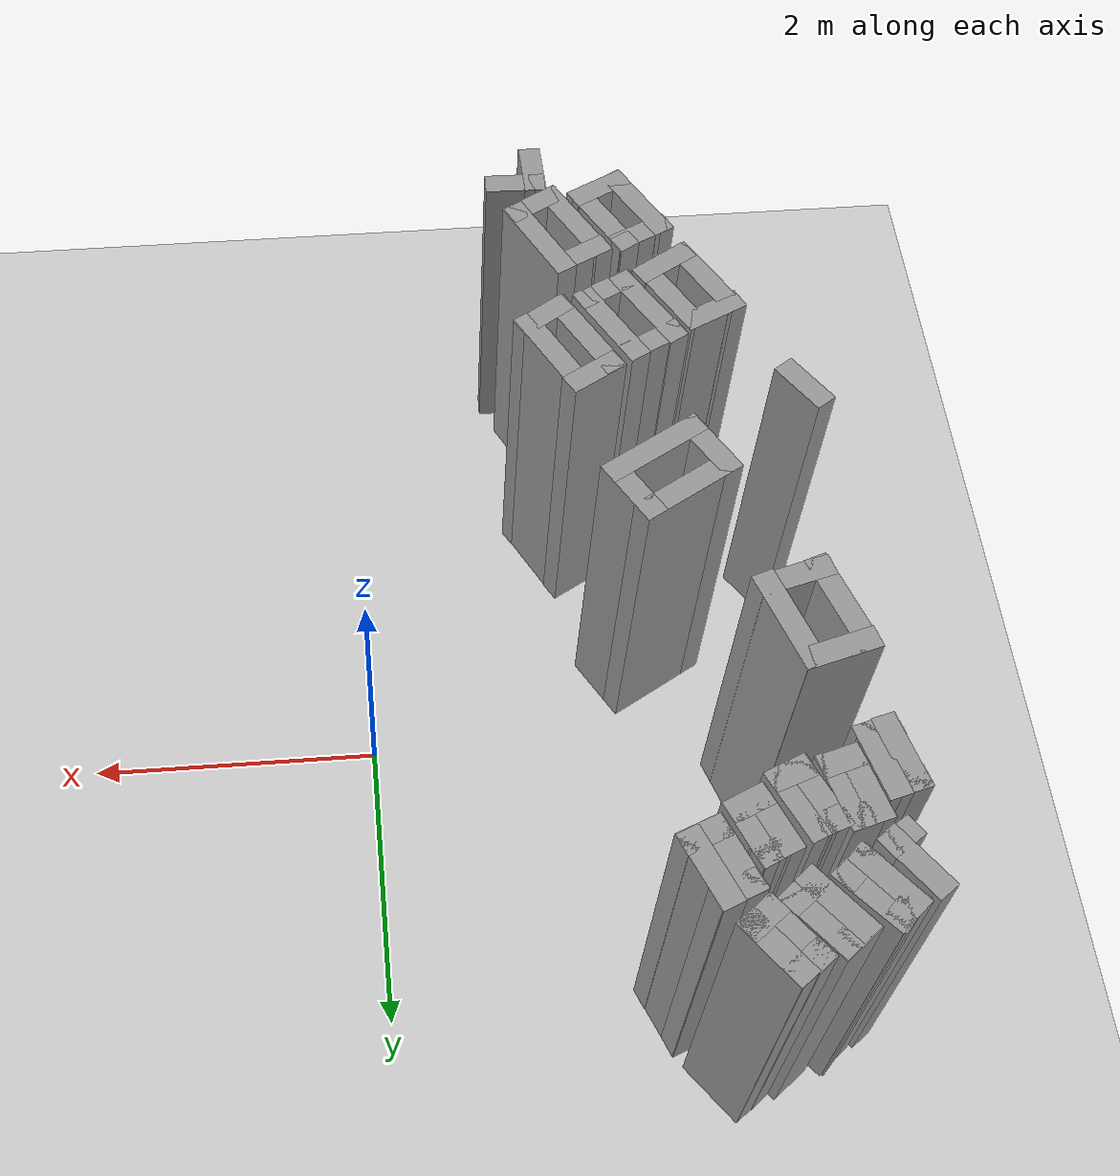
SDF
<sdf version="1.7">
 <world name="default">
  <include><uri>model://sun</uri></include>
  <include><uri>model://ground_plane</uri></include>
  <model name="iitj">
   <pose>-3.03973 -1.21048 0 0 -0 0</pose>
   <link name="Wall_186">
    <collision name="Wall_186_Collision">
     <geometry><box><size>0.64769 0.15 2.5</size></box></geometry>
     <pose>0 0 1.25 0 -0 0</pose>
    </collision>
    <visual name="Wall_186_Visual">
     <pose>0 0 1.25 0 -0 0</pose>
     <geometry><box><size>0.64769 0.15 2.5</size></box></geometry>
     <material>
      <script><uri>file://media/materials/scripts/gazebo.material</uri><name>Gazebo/Grey</name></script>
      <ambient>1 1 1 1</ambient>
     </material>
     <meta><layer>0</layer></meta>
    </visual>
    <pose>0.987547 -1.66589 0 0 -0 -1.06824</pose>
   </link>
   <link name="Wall_187">
    <collision name="Wall_187_Collision">
     <geometry><box><size>0.437529 0.15 2.5</size></box></geometry>
     <pose>0 0 1.25 0 -0 0</pose>
    </collision>
    <visual name="Wall_187_Visual">
     <pose>0 0 1.25 0 -0 0</pose>
     <geometry><box><size>0.437529 0.15 2.5</size></box></geometry>
     <material>
      <script><uri>file://media/materials/scripts/gazebo.material</uri><name>Gazebo/Grey</name></script>
      <ambient>1 1 1 1</ambient>
     </material>
     <meta><layer>0</layer></meta>
    </visual>
    <pose>1.23128 -1.81951 0 0 -0 0.464887</pose>
   </link>
   <link name="Wall_188">
    <collision name="Wall_188_Collision">
     <geometry><box><size>0.64769 0.15 2.5</size></box></geometry>
     <pose>0 0 1.25 0 -0 0</pose>
    </collision>
    <visual name="Wall_188_Visual">
     <pose>0 0 1.25 0 -0 0</pose>
     <geometry><box><size>0.64769 0.15 2.5</size></box></geometry>
     <material>
      <script><uri>file://media/materials/scripts/gazebo.material</uri><name>Gazebo/Grey</name></script>
      <ambient>1 1 1 1</ambient>
     </material>
     <meta><layer>0</layer></meta>
    </visual>
    <pose>1.23992 -1.53698 0 0 -0 2.07335</pose>
   </link>
   <link name="Wall_189">
    <collision name="Wall_189_Collision">
     <geometry><box><size>0.439662 0.15 2.5</size></box></geometry>
     <pose>0 0 1.25 0 -0 0</pose>
    </collision>
    <visual name="Wall_189_Visual">
     <pose>0 0 1.25 0 -0 0</pose>
     <geometry><box><size>0.439662 0.15 2.5</size></box></geometry>
     <material>
      <script><uri>file://media/materials/scripts/gazebo.material</uri><name>Gazebo/Grey</name></script>
      <ambient>1 1 1 1</ambient>
     </material>
     <meta><layer>0</layer></meta>
    </visual>
    <pose>0.993875 -1.38568 0 0 -0 -2.69819</pose>
   </link>
   <link name="Wall_193">
    <collision name="Wall_193_Collision">
     <geometry><box><size>0.442594 0.15 2.5</size></box></geometry>
     <pose>0 0 1.25 0 -0 0</pose>
    </collision>
    <visual name="Wall_193_Visual">
     <pose>0 0 1.25 0 -0 0</pose>
     <geometry><box><size>0.442594 0.15 2.5</size></box></geometry>
     <material>
      <script><uri>file://media/materials/scripts/gazebo.material</uri><name>Gazebo/Grey</name></script>
      <ambient>1 1 1 1</ambient>
     </material>
     <meta><layer>0</layer></meta>
    </visual>
    <pose>0.874775 -1.09728 0 0 -0 0.537733</pose>
   </link>
   <link name="Wall_195">
    <collision name="Wall_195_Collision">
     <geometry><box><size>0.644327 0.15 2.5</size></box></geometry>
     <pose>0 0 1.25 0 -0 0</pose>
    </collision>
    <visual name="Wall_195_Visual">
     <pose>0 0 1.25 0 -0 0</pose>
     <geometry><box><size>0.644327 0.15 2.5</size></box></geometry>
     <material>
      <script><uri>file://media/materials/scripts/gazebo.material</uri><name>Gazebo/Grey</name></script>
      <ambient>1 1 1 1</ambient>
     </material>
     <meta><layer>0</layer></meta>
    </visual>
    <pose>0.871209 -0.806616 0 0 -0 -1.06094</pose>
   </link>
   <link name="Wall_197">
    <collision name="Wall_197_Collision">
     <geometry><box><size>0.673902 0.15 2.5</size></box></geometry>
     <pose>0 0 1.25 0 -0 0</pose>
    </collision>
    <visual name="Wall_197_Visual">
     <pose>0 0 1.25 0 -0 0</pose>
     <geometry><box><size>0.673902 0.15 2.5</size></box></geometry>
     <material>
      <script><uri>file://media/materials/scripts/gazebo.material</uri><name>Gazebo/Grey</name></script>
      <ambient>1 1 1 1</ambient>
     </material>
     <meta><layer>0</layer></meta>
    </visual>
    <pose>0.613228 -0.944134 0 0 -0 2.08502</pose>
   </link>
   <link name="Wall_199">
    <collision name="Wall_199_Collision">
     <geometry><box><size>0.444158 0.15 2.5</size></box></geometry>
     <pose>0 0 1.25 0 -0 0</pose>
    </collision>
    <visual name="Wall_199_Visual">
     <pose>0 0 1.25 0 -0 0</pose>
     <geometry><box><size>0.444158 0.15 2.5</size></box></geometry>
     <material>
      <script><uri>file://media/materials/scripts/gazebo.material</uri><name>Gazebo/Grey</name></script>
      <ambient>1 1 1 1</ambient>
     </material>
     <meta><layer>0</layer></meta>
    </visual>
    <pose>0.61043 -0.653474 0 0 -0 0.439548</pose>
   </link>
   <link name="Wall_202">
    <collision name="Wall_202_Collision">
     <geometry><box><size>0.698683 0.15 2.5</size></box></geometry>
     <pose>0 0 1.25 0 -0 0</pose>
    </collision>
    <visual name="Wall_202_Visual">
     <pose>0 0 1.25 0 -0 0</pose>
     <geometry><box><size>0.698683 0.15 2.5</size></box></geometry>
     <material>
      <script><uri>file://media/materials/scripts/gazebo.material</uri><name>Gazebo/Grey</name></script>
      <ambient>1 1 1 1</ambient>
     </material>
     <meta><layer>0</layer></meta>
    </visual>
    <pose>1.44228 -1.52213 0 0 -0 -1.07463</pose>
   </link>
   <link name="Wall_203">
    <collision name="Wall_203_Collision">
     <geometry><box><size>0.419364 0.15 2.5</size></box></geometry>
     <pose>0 0 1.25 0 -0 0</pose>
    </collision>
    <visual name="Wall_203_Visual">
     <pose>0 0 1.25 0 -0 0</pose>
     <geometry><box><size>0.419364 0.15 2.5</size></box></geometry>
     <material>
      <script><uri>file://media/materials/scripts/gazebo.material</uri><name>Gazebo/Grey</name></script>
      <ambient>1 1 1 1</ambient>
     </material>
     <meta><layer>0</layer></meta>
    </visual>
    <pose>1.69514 -1.70243 0 0 -0 0.508676</pose>
   </link>
   <link name="Wall_204">
    <collision name="Wall_204_Collision">
     <geometry><box><size>0.692978 0.15 2.5</size></box></geometry>
     <pose>0 0 1.25 0 -0 0</pose>
    </collision>
    <visual name="Wall_204_Visual">
     <pose>0 0 1.25 0 -0 0</pose>
     <geometry><box><size>0.692978 0.15 2.5</size></box></geometry>
     <material>
      <script><uri>file://media/materials/scripts/gazebo.material</uri><name>Gazebo/Grey</name></script>
      <ambient>1 1 1 1</ambient>
     </material>
     <meta><layer>0</layer></meta>
    </visual>
    <pose>1.69291 -1.39094 0 0 -0 2.04719</pose>
   </link>
   <link name="Wall_205">
    <collision name="Wall_205_Collision">
     <geometry><box><size>0.436235 0.15 2.5</size></box></geometry>
     <pose>0 0 1.25 0 -0 0</pose>
    </collision>
    <visual name="Wall_205_Visual">
     <pose>0 0 1.25 0 -0 0</pose>
     <geometry><box><size>0.436235 0.15 2.5</size></box></geometry>
     <material>
      <script><uri>file://media/materials/scripts/gazebo.material</uri><name>Gazebo/Grey</name></script>
      <ambient>1 1 1 1</ambient>
     </material>
     <meta><layer>0</layer></meta>
    </visual>
    <pose>1.43541 -1.21759 0 0 -0 -2.68364</pose>
   </link>
   <link name="Wall_207">
    <collision name="Wall_207_Collision">
     <geometry><box><size>0.680486 0.15 2.5</size></box></geometry>
     <pose>0 0 1.25 0 -0 0</pose>
    </collision>
    <visual name="Wall_207_Visual">
     <pose>0 0 1.25 0 -0 0</pose>
     <geometry><box><size>0.680486 0.15 2.5</size></box></geometry>
     <material>
      <script><uri>file://media/materials/scripts/gazebo.material</uri><name>Gazebo/Grey</name></script>
      <ambient>1 1 1 1</ambient>
     </material>
     <meta><layer>0</layer></meta>
    </visual>
    <pose>1.03344 -0.723588 0 0 -0 -1.05162</pose>
   </link>
   <link name="Wall_208">
    <collision name="Wall_208_Collision">
     <geometry><box><size>0.44288 0.15 2.5</size></box></geometry>
     <pose>0 0 1.25 0 -0 0</pose>
    </collision>
    <visual name="Wall_208_Visual">
     <pose>0 0 1.25 0 -0 0</pose>
     <geometry><box><size>0.44288 0.15 2.5</size></box></geometry>
     <material>
      <script><uri>file://media/materials/scripts/gazebo.material</uri><name>Gazebo/Grey</name></script>
      <ambient>1 1 1 1</ambient>
     </material>
     <meta><layer>0</layer></meta>
    </visual>
    <pose>1.29554 -0.893568 0 0 -0 0.470946</pose>
   </link>
   <link name="Wall_209">
    <collision name="Wall_209_Collision">
     <geometry><box><size>0.676358 0.15 2.5</size></box></geometry>
     <pose>0 0 1.25 0 -0 0</pose>
    </collision>
    <visual name="Wall_209_Visual">
     <pose>0 0 1.25 0 -0 0</pose>
     <geometry><box><size>0.676358 0.15 2.5</size></box></geometry>
     <material>
      <script><uri>file://media/materials/scripts/gazebo.material</uri><name>Gazebo/Grey</name></script>
      <ambient>1 1 1 1</ambient>
     </material>
     <meta><layer>0</layer></meta>
    </visual>
    <pose>1.29865 -0.590699 0 0 -0 2.07608</pose>
   </link>
   <link name="Wall_210">
    <collision name="Wall_210_Collision">
     <geometry><box><size>0.44288 0.15 2.5</size></box></geometry>
     <pose>0 0 1.25 0 -0 0</pose>
    </collision>
    <visual name="Wall_210_Visual">
     <pose>0 0 1.25 0 -0 0</pose>
     <geometry><box><size>0.44288 0.15 2.5</size></box></geometry>
     <material>
      <script><uri>file://media/materials/scripts/gazebo.material</uri><name>Gazebo/Grey</name></script>
      <ambient>1 1 1 1</ambient>
     </material>
     <meta><layer>0</layer></meta>
    </visual>
    <pose>1.03234 -0.435274 0 0 -0 -2.67065</pose>
   </link>
   <link name="Wall_229">
    <collision name="Wall_229_Collision">
     <geometry><box><size>0.721755 0.15 2.5</size></box></geometry>
     <pose>0 0 1.25 0 -0 0</pose>
    </collision>
    <visual name="Wall_229_Visual">
     <pose>0 0 1.25 0 -0 0</pose>
     <geometry><box><size>0.721755 0.15 2.5</size></box></geometry>
     <material>
      <script><uri>file://media/materials/scripts/gazebo.material</uri><name>Gazebo/Grey</name></script>
      <ambient>1 1 1 1</ambient>
     </material>
     <meta><layer>0</layer></meta>
    </visual>
    <pose>1.4811 -0.518174 0 0 -0 -1.06809</pose>
   </link>
   <link name="Wall_230">
    <collision name="Wall_230_Collision">
     <geometry><box><size>0.403657 0.15 2.5</size></box></geometry>
     <pose>0 0 1.25 0 -0 0</pose>
    </collision>
    <visual name="Wall_230_Visual">
     <pose>0 0 1.25 0 -0 0</pose>
     <geometry><box><size>0.403657 0.15 2.5</size></box></geometry>
     <material>
      <script><uri>file://media/materials/scripts/gazebo.material</uri><name>Gazebo/Grey</name></script>
      <ambient>1 1 1 1</ambient>
     </material>
     <meta><layer>0</layer></meta>
    </visual>
    <pose>1.73193 -0.700541 0 0 -0 0.567212</pose>
   </link>
   <link name="Wall_231">
    <collision name="Wall_231_Collision">
     <geometry><box><size>0.718731 0.15 2.5</size></box></geometry>
     <pose>0 0 1.25 0 -0 0</pose>
    </collision>
    <visual name="Wall_231_Visual">
     <pose>0 0 1.25 0 -0 0</pose>
     <geometry><box><size>0.718731 0.15 2.5</size></box></geometry>
     <material>
      <script><uri>file://media/materials/scripts/gazebo.material</uri><name>Gazebo/Grey</name></script>
      <ambient>1 1 1 1</ambient>
     </material>
     <meta><layer>0</layer></meta>
    </visual>
    <pose>1.70433 -0.388941 0 0 -0 2.06375</pose>
   </link>
   <link name="Wall_232">
    <collision name="Wall_232_Collision">
     <geometry><box><size>0.411045 0.15 2.5</size></box></geometry>
     <pose>0 0 1.25 0 -0 0</pose>
    </collision>
    <visual name="Wall_232_Visual">
     <pose>0 0 1.25 0 -0 0</pose>
     <geometry><box><size>0.411045 0.15 2.5</size></box></geometry>
     <material>
      <script><uri>file://media/materials/scripts/gazebo.material</uri><name>Gazebo/Grey</name></script>
      <ambient>1 1 1 1</ambient>
     </material>
     <meta><layer>0</layer></meta>
    </visual>
    <pose>1.45656 -0.196356 0 0 -0 -2.62051</pose>
   </link>
   <link name="Wall_291">
    <collision name="Wall_291_Collision">
     <geometry><box><size>0.411103 0.15 2.5</size></box></geometry>
     <pose>0 0 1.25 0 -0 0</pose>
    </collision>
    <visual name="Wall_291_Visual">
     <pose>0 0 1.25 0 -0 0</pose>
     <geometry><box><size>0.411103 0.15 2.5</size></box></geometry>
     <material>
      <script><uri>file://media/materials/scripts/gazebo.material</uri><name>Gazebo/Grey</name></script>
      <ambient>1 1 1 1</ambient>
     </material>
     <meta><layer>0</layer></meta>
    </visual>
    <pose>0.109841 0.002373 0 0 -0 2.16295</pose>
   </link>
   <link name="Wall_299">
    <collision name="Wall_299_Collision">
     <geometry><box><size>0.5 0.15 2.5</size></box></geometry>
     <pose>0 0 1.25 0 -0 0</pose>
    </collision>
    <visual name="Wall_299_Visual">
     <pose>0 0 1.25 0 -0 0</pose>
     <geometry><box><size>0.5 0.15 2.5</size></box></geometry>
     <material>
      <script><uri>file://media/materials/scripts/gazebo.material</uri><name>Gazebo/Grey</name></script>
      <ambient>1 1 1 1</ambient>
     </material>
     <meta><layer>0</layer></meta>
    </visual>
    <pose>0.800896 0.445729 0 0 -0 -1.0472</pose>
   </link>
   <link name="Wall_300">
    <collision name="Wall_300_Collision">
     <geometry><box><size>0.75 0.15 2.5</size></box></geometry>
     <pose>0 0 1.25 0 -0 0</pose>
    </collision>
    <visual name="Wall_300_Visual">
     <pose>0 0 1.25 0 -0 0</pose>
     <geometry><box><size>0.75 0.15 2.5</size></box></geometry>
     <material>
      <script><uri>file://media/materials/scripts/gazebo.material</uri><name>Gazebo/Grey</name></script>
      <ambient>1 1 1 1</ambient>
     </material>
     <meta><layer>0</layer></meta>
    </visual>
    <pose>1.1482 0.444175 0 0 -0 0.523599</pose>
   </link>
   <link name="Wall_301">
    <collision name="Wall_301_Collision">
     <geometry><box><size>0.5 0.15 2.5</size></box></geometry>
     <pose>0 0 1.25 0 -0 0</pose>
    </collision>
    <visual name="Wall_301_Visual">
     <pose>0 0 1.25 0 -0 0</pose>
     <geometry><box><size>0.5 0.15 2.5</size></box></geometry>
     <material>
      <script><uri>file://media/materials/scripts/gazebo.material</uri><name>Gazebo/Grey</name></script>
      <ambient>1 1 1 1</ambient>
     </material>
     <meta><layer>0</layer></meta>
    </visual>
    <pose>1.32051 0.745729 0 0 -0 2.0944</pose>
   </link>
   <link name="Wall_302">
    <collision name="Wall_302_Collision">
     <geometry><box><size>0.75 0.15 2.5</size></box></geometry>
     <pose>0 0 1.25 0 -0 0</pose>
    </collision>
    <visual name="Wall_302_Visual">
     <pose>0 0 1.25 0 -0 0</pose>
     <geometry><box><size>0.75 0.15 2.5</size></box></geometry>
     <material>
      <script><uri>file://media/materials/scripts/gazebo.material</uri><name>Gazebo/Grey</name></script>
      <ambient>1 1 1 1</ambient>
     </material>
     <meta><layer>0</layer></meta>
    </visual>
    <pose>0.973204 0.747284 0 0 -0 -2.61799</pose>
   </link>
   <link name="Wall_309">
    <collision name="Wall_309_Collision">
     <geometry><box><size>0.5 0.15 2.5</size></box></geometry>
     <pose>0 0 1.25 0 -0 0</pose>
    </collision>
    <visual name="Wall_309_Visual">
     <pose>0 0 1.25 0 -0 0</pose>
     <geometry><box><size>0.5 0.15 2.5</size></box></geometry>
     <material>
      <script><uri>file://media/materials/scripts/gazebo.material</uri><name>Gazebo/Grey</name></script>
      <ambient>1 1 1 1</ambient>
     </material>
     <meta><layer>0</layer></meta>
    </visual>
    <pose>0.038707 2.6903 0 0 -0 -1.309</pose>
   </link>
   <link name="Wall_316">
    <collision name="Wall_316_Collision">
     <geometry><box><size>0.279545 0.15 2.5</size></box></geometry>
     <pose>0 0 1.25 0 -0 0</pose>
    </collision>
    <visual name="Wall_316_Visual">
     <pose>0 0 1.25 0 -0 0</pose>
     <geometry><box><size>0.279545 0.15 2.5</size></box></geometry>
     <material>
      <script><uri>file://media/materials/scripts/gazebo.material</uri><name>Gazebo/Grey</name></script>
      <ambient>1 1 1 1</ambient>
     </material>
     <meta><layer>0</layer></meta>
    </visual>
    <pose>0.141652 2.54356 0 0 -0 0.275483</pose>
   </link>
   <link name="Wall_317">
    <collision name="Wall_317_Collision">
     <geometry><box><size>0.5 0.15 2.5</size></box></geometry>
     <pose>0 0 1.25 0 -0 0</pose>
    </collision>
    <visual name="Wall_317_Visual">
     <pose>0 0 1.25 0 -0 0</pose>
     <geometry><box><size>0.5 0.15 2.5</size></box></geometry>
     <material>
      <script><uri>file://media/materials/scripts/gazebo.material</uri><name>Gazebo/Grey</name></script>
      <ambient>1 1 1 1</ambient>
     </material>
     <meta><layer>0</layer></meta>
    </visual>
    <pose>0.158689 2.73021 0 0 -0 1.8326</pose>
   </link>
   <link name="Wall_318">
    <collision name="Wall_318_Collision">
     <geometry><box><size>0.279545 0.15 2.5</size></box></geometry>
     <pose>0 0 1.25 0 -0 0</pose>
    </collision>
    <visual name="Wall_318_Visual">
     <pose>0 0 1.25 0 -0 0</pose>
     <geometry><box><size>0.279545 0.15 2.5</size></box></geometry>
     <material>
      <script><uri>file://media/materials/scripts/gazebo.material</uri><name>Gazebo/Grey</name></script>
      <ambient>1 1 1 1</ambient>
     </material>
     <meta><layer>0</layer></meta>
    </visual>
    <pose>0.051065 2.88163 0 0 -0 -2.86611</pose>
   </link>
   <link name="Wall_320">
    <collision name="Wall_320_Collision">
     <geometry><box><size>0.5 0.15 2.5</size></box></geometry>
     <pose>0 0 1.25 0 -0 0</pose>
    </collision>
    <visual name="Wall_320_Visual">
     <pose>0 0 1.25 0 -0 0</pose>
     <geometry><box><size>0.5 0.15 2.5</size></box></geometry>
     <material>
      <script><uri>file://media/materials/scripts/gazebo.material</uri><name>Gazebo/Grey</name></script>
      <ambient>1 1 1 1</ambient>
     </material>
     <meta><layer>0</layer></meta>
    </visual>
    <pose>0.286686 2.8708 0 0 -0 -1.309</pose>
   </link>
   <link name="Wall_321">
    <collision name="Wall_321_Collision">
     <geometry><box><size>0.27505 0.15 2.5</size></box></geometry>
     <pose>0 0 1.25 0 -0 0</pose>
    </collision>
    <visual name="Wall_321_Visual">
     <pose>0 0 1.25 0 -0 0</pose>
     <geometry><box><size>0.27505 0.15 2.5</size></box></geometry>
     <material>
      <script><uri>file://media/materials/scripts/gazebo.material</uri><name>Gazebo/Grey</name></script>
      <ambient>1 1 1 1</ambient>
     </material>
     <meta><layer>0</layer></meta>
    </visual>
    <pose>0.39197 2.71939 0 0 -0 0.285659</pose>
   </link>
   <link name="Wall_322">
    <collision name="Wall_322_Collision">
     <geometry><box><size>0.5 0.15 2.5</size></box></geometry>
     <pose>0 0 1.25 0 -0 0</pose>
    </collision>
    <visual name="Wall_322_Visual">
     <pose>0 0 1.25 0 -0 0</pose>
     <geometry><box><size>0.5 0.15 2.5</size></box></geometry>
     <material>
      <script><uri>file://media/materials/scripts/gazebo.material</uri><name>Gazebo/Grey</name></script>
      <ambient>1 1 1 1</ambient>
     </material>
     <meta><layer>0</layer></meta>
    </visual>
    <pose>0.40199 2.90136 0 0 -0 1.8326</pose>
   </link>
   <link name="Wall_323">
    <collision name="Wall_323_Collision">
     <geometry><box><size>0.27505 0.15 2.5</size></box></geometry>
     <pose>0 0 1.25 0 -0 0</pose>
    </collision>
    <visual name="Wall_323_Visual">
     <pose>0 0 1.25 0 -0 0</pose>
     <geometry><box><size>0.27505 0.15 2.5</size></box></geometry>
     <material>
      <script><uri>file://media/materials/scripts/gazebo.material</uri><name>Gazebo/Grey</name></script>
      <ambient>1 1 1 1</ambient>
     </material>
     <meta><layer>0</layer></meta>
    </visual>
    <pose>0.301383 3.05746 0 0 -0 -2.85593</pose>
   </link>
   <link name="Wall_340">
    <collision name="Wall_340_Collision">
     <geometry><box><size>0.273382 0.15 2.5</size></box></geometry>
     <pose>0 0 1.25 0 -0 0</pose>
    </collision>
    <visual name="Wall_340_Visual">
     <pose>0 0 1.25 0 -0 0</pose>
     <geometry><box><size>0.273382 0.15 2.5</size></box></geometry>
     <material>
      <script><uri>file://media/materials/scripts/gazebo.material</uri><name>Gazebo/Grey</name></script>
      <ambient>1 1 1 1</ambient>
     </material>
     <meta><layer>0</layer></meta>
    </visual>
    <pose>0.544747 3.09506 0 0 -0 -2.79611</pose>
   </link>
   <link name="Wall_341">
    <collision name="Wall_341_Collision">
     <geometry><box><size>0.497913 0.15 2.5</size></box></geometry>
     <pose>0 0 1.25 0 -0 0</pose>
    </collision>
    <visual name="Wall_341_Visual">
     <pose>0 0 1.25 0 -0 0</pose>
     <geometry><box><size>0.497913 0.15 2.5</size></box></geometry>
     <material>
      <script><uri>file://media/materials/scripts/gazebo.material</uri><name>Gazebo/Grey</name></script>
      <ambient>1 1 1 1</ambient>
     </material>
     <meta><layer>0</layer></meta>
    </visual>
    <pose>0.561415 2.91316 0 0 -0 -1.14382</pose>
   </link>
   <link name="Wall_342">
    <collision name="Wall_342_Collision">
     <geometry><box><size>0.273382 0.15 2.5</size></box></geometry>
     <pose>0 0 1.25 0 -0 0</pose>
    </collision>
    <visual name="Wall_342_Visual">
     <pose>0 0 1.25 0 -0 0</pose>
     <geometry><box><size>0.273382 0.15 2.5</size></box></geometry>
     <material>
      <script><uri>file://media/materials/scripts/gazebo.material</uri><name>Gazebo/Grey</name></script>
      <ambient>1 1 1 1</ambient>
     </material>
     <meta><layer>0</layer></meta>
    </visual>
    <pose>0.688826 2.77839 0 0 -0 0.345479</pose>
   </link>
   <link name="Wall_343">
    <collision name="Wall_343_Collision">
     <geometry><box><size>0.497913 0.15 2.5</size></box></geometry>
     <pose>0 0 1.25 0 -0 0</pose>
    </collision>
    <visual name="Wall_343_Visual">
     <pose>0 0 1.25 0 -0 0</pose>
     <geometry><box><size>0.497913 0.15 2.5</size></box></geometry>
     <material>
      <script><uri>file://media/materials/scripts/gazebo.material</uri><name>Gazebo/Grey</name></script>
      <ambient>1 1 1 1</ambient>
     </material>
     <meta><layer>0</layer></meta>
    </visual>
    <pose>0.67951 2.96229 0 0 -0 1.99778</pose>
   </link>
   <link name="Wall_350">
    <collision name="Wall_350_Collision">
     <geometry><box><size>0.449589 0.15 2.5</size></box></geometry>
     <pose>0 0 1.25 0 -0 0</pose>
    </collision>
    <visual name="Wall_350_Visual">
     <pose>0 0 1.25 0 -0 0</pose>
     <geometry><box><size>0.449589 0.15 2.5</size></box></geometry>
     <material>
      <script><uri>file://media/materials/scripts/gazebo.material</uri><name>Gazebo/Grey</name></script>
      <ambient>1 1 1 1</ambient>
     </material>
     <meta><layer>0</layer></meta>
    </visual>
    <pose>0.840716 3.05729 0 0 -0 -1.17613</pose>
   </link>
   <link name="Wall_351">
    <collision name="Wall_351_Collision">
     <geometry><box><size>0.274305 0.15 2.5</size></box></geometry>
     <pose>0 0 1.25 0 -0 0</pose>
    </collision>
    <visual name="Wall_351_Visual">
     <pose>0 0 1.25 0 -0 0</pose>
     <geometry><box><size>0.274305 0.15 2.5</size></box></geometry>
     <material>
      <script><uri>file://media/materials/scripts/gazebo.material</uri><name>Gazebo/Grey</name></script>
      <ambient>1 1 1 1</ambient>
     </material>
     <meta><layer>0</layer></meta>
    </visual>
    <pose>0.958158 2.94431 0 0 -0 0.419245</pose>
   </link>
   <link name="Wall_352">
    <collision name="Wall_352_Collision">
     <geometry><box><size>0.452431 0.15 2.5</size></box></geometry>
     <pose>0 0 1.25 0 -0 0</pose>
    </collision>
    <visual name="Wall_352_Visual">
     <pose>0 0 1.25 0 -0 0</pose>
     <geometry><box><size>0.452431 0.15 2.5</size></box></geometry>
     <material>
      <script><uri>file://media/materials/scripts/gazebo.material</uri><name>Gazebo/Grey</name></script>
      <ambient>1 1 1 1</ambient>
     </material>
     <meta><layer>0</layer></meta>
    </visual>
    <pose>0.960407 3.10943 0 0 -0 1.96156</pose>
   </link>
   <link name="Wall_353">
    <collision name="Wall_353_Collision">
     <geometry><box><size>0.275589 0.15 2.5</size></box></geometry>
     <pose>0 0 1.25 0 -0 0</pose>
    </collision>
    <visual name="Wall_353_Visual">
     <pose>0 0 1.25 0 -0 0</pose>
     <geometry><box><size>0.275589 0.15 2.5</size></box></geometry>
     <material>
      <script><uri>file://media/materials/scripts/gazebo.material</uri><name>Gazebo/Grey</name></script>
      <ambient>1 1 1 1</ambient>
     </material>
     <meta><layer>0</layer></meta>
    </visual>
    <pose>0.842965 3.22241 0 0 -0 -2.69997</pose>
   </link>
   <link name="Wall_355">
    <collision name="Wall_355_Collision">
     <geometry><box><size>0.513061 0.15 2.5</size></box></geometry>
     <pose>0 0 1.25 0 -0 0</pose>
    </collision>
    <visual name="Wall_355_Visual">
     <pose>0 0 1.25 0 -0 0</pose>
     <geometry><box><size>0.513061 0.15 2.5</size></box></geometry>
     <material>
      <script><uri>file://media/materials/scripts/gazebo.material</uri><name>Gazebo/Grey</name></script>
      <ambient>1 1 1 1</ambient>
     </material>
     <meta><layer>0</layer></meta>
    </visual>
    <pose>1.09585 3.25414 0 0 -0 -1.17973</pose>
   </link>
   <link name="Wall_356">
    <collision name="Wall_356_Collision">
     <geometry><box><size>0.295695 0.15 2.5</size></box></geometry>
     <pose>0 0 1.25 0 -0 0</pose>
    </collision>
    <visual name="Wall_356_Visual">
     <pose>0 0 1.25 0 -0 0</pose>
     <geometry><box><size>0.295695 0.15 2.5</size></box></geometry>
     <material>
      <script><uri>file://media/materials/scripts/gazebo.material</uri><name>Gazebo/Grey</name></script>
      <ambient>1 1 1 1</ambient>
     </material>
     <meta><layer>0</layer></meta>
    </visual>
    <pose>1.23728 3.11687 0 0 -0 0.370571</pose>
   </link>
   <link name="Wall_357">
    <collision name="Wall_357_Collision">
     <geometry><box><size>0.513061 0.15 2.5</size></box></geometry>
     <pose>0 0 1.25 0 -0 0</pose>
    </collision>
    <visual name="Wall_357_Visual">
     <pose>0 0 1.25 0 -0 0</pose>
     <geometry><box><size>0.513061 0.15 2.5</size></box></geometry>
     <material>
      <script><uri>file://media/materials/scripts/gazebo.material</uri><name>Gazebo/Grey</name></script>
      <ambient>1 1 1 1</ambient>
     </material>
     <meta><layer>0</layer></meta>
    </visual>
    <pose>1.23218 3.31524 0 0 -0 1.96186</pose>
   </link>
   <link name="Wall_358">
    <collision name="Wall_358_Collision">
     <geometry><box><size>0.295695 0.15 2.5</size></box></geometry>
     <pose>0 0 1.25 0 -0 0</pose>
    </collision>
    <visual name="Wall_358_Visual">
     <pose>0 0 1.25 0 -0 0</pose>
     <geometry><box><size>0.295695 0.15 2.5</size></box></geometry>
     <material>
      <script><uri>file://media/materials/scripts/gazebo.material</uri><name>Gazebo/Grey</name></script>
      <ambient>1 1 1 1</ambient>
     </material>
     <meta><layer>0</layer></meta>
    </visual>
    <pose>1.09889 3.45252 0 0 -0 -2.77102</pose>
   </link>
   <link name="Wall_371">
    <collision name="Wall_371_Collision">
     <geometry><box><size>0.248576 0.15 2.5</size></box></geometry>
     <pose>0 0 1.25 0 -0 0</pose>
    </collision>
    <visual name="Wall_371_Visual">
     <pose>0 0 1.25 0 -0 0</pose>
     <geometry><box><size>0.248576 0.15 2.5</size></box></geometry>
     <material>
      <script><uri>file://media/materials/scripts/gazebo.material</uri><name>Gazebo/Grey</name></script>
      <ambient>1 1 1 1</ambient>
     </material>
     <meta><layer>0</layer></meta>
    </visual>
    <pose>0.14729 3.21103 0 0 -0 0.596993</pose>
   </link>
   <link name="Wall_372">
    <collision name="Wall_372_Collision">
     <geometry><box><size>0.479969 0.15 2.5</size></box></geometry>
     <pose>0 0 1.25 0 -0 0</pose>
    </collision>
    <visual name="Wall_372_Visual">
     <pose>0 0 1.25 0 -0 0</pose>
     <geometry><box><size>0.479969 0.15 2.5</size></box></geometry>
     <material>
      <script><uri>file://media/materials/scripts/gazebo.material</uri><name>Gazebo/Grey</name></script>
      <ambient>1 1 1 1</ambient>
     </material>
     <meta><layer>0</layer></meta>
    </visual>
    <pose>0.09176 3.36568 0 0 -0 2.19401</pose>
   </link>
   <link name="Wall_375">
    <collision name="Wall_375_Collision">
     <geometry><box><size>0.488446 0.15 2.5</size></box></geometry>
     <pose>0 0 1.25 0 -0 0</pose>
    </collision>
    <visual name="Wall_375_Visual">
     <pose>0 0 1.25 0 -0 0</pose>
     <geometry><box><size>0.488446 0.15 2.5</size></box></geometry>
     <material>
      <script><uri>file://media/materials/scripts/gazebo.material</uri><name>Gazebo/Grey</name></script>
      <ambient>1 1 1 1</ambient>
     </material>
     <meta><layer>0</layer></meta>
    </visual>
    <pose>0.265353 3.46137 0 0 -0 -0.882735</pose>
   </link>
   <link name="Wall_376">
    <collision name="Wall_376_Collision">
     <geometry><box><size>0.280669 0.15 2.5</size></box></geometry>
     <pose>0 0 1.25 0 -0 0</pose>
    </collision>
    <visual name="Wall_376_Visual">
     <pose>0 0 1.25 0 -0 0</pose>
     <geometry><box><size>0.280669 0.15 2.5</size></box></geometry>
     <material>
      <script><uri>file://media/materials/scripts/gazebo.material</uri><name>Gazebo/Grey</name></script>
      <ambient>1 1 1 1</ambient>
     </material>
     <meta><layer>0</layer></meta>
    </visual>
    <pose>0.424462 3.37066 0 0 -0 0.76003</pose>
   </link>
   <link name="Wall_377">
    <collision name="Wall_377_Collision">
     <geometry><box><size>0.493988 0.15 2.5</size></box></geometry>
     <pose>0 0 1.25 0 -0 0</pose>
    </collision>
    <visual name="Wall_377_Visual">
     <pose>0 0 1.25 0 -0 0</pose>
     <geometry><box><size>0.493988 0.15 2.5</size></box></geometry>
     <material>
      <script><uri>file://media/materials/scripts/gazebo.material</uri><name>Gazebo/Grey</name></script>
      <ambient>1 1 1 1</ambient>
     </material>
     <meta><layer>0</layer></meta>
    </visual>
    <pose>0.366318 3.54372 0 0 -0 2.29879</pose>
   </link>
   <link name="Wall_378">
    <collision name="Wall_378_Collision">
     <geometry><box><size>0.26652 0.15 2.5</size></box></geometry>
     <pose>0 0 1.25 0 -0 0</pose>
    </collision>
    <visual name="Wall_378_Visual">
     <pose>0 0 1.25 0 -0 0</pose>
     <geometry><box><size>0.26652 0.15 2.5</size></box></geometry>
     <material>
      <script><uri>file://media/materials/scripts/gazebo.material</uri><name>Gazebo/Grey</name></script>
      <ambient>1 1 1 1</ambient>
     </material>
     <meta><layer>0</layer></meta>
    </visual>
    <pose>0.202558 3.62978 0 0 -0 -2.32796</pose>
   </link>
   <link name="Wall_380">
    <collision name="Wall_380_Collision">
     <geometry><box><size>0.503276 0.15 2.5</size></box></geometry>
     <pose>0 0 1.25 0 -0 0</pose>
    </collision>
    <visual name="Wall_380_Visual">
     <pose>0 0 1.25 0 -0 0</pose>
     <geometry><box><size>0.503276 0.15 2.5</size></box></geometry>
     <material>
      <script><uri>file://media/materials/scripts/gazebo.material</uri><name>Gazebo/Grey</name></script>
      <ambient>1 1 1 1</ambient>
     </material>
     <meta><layer>0</layer></meta>
    </visual>
    <pose>0.575478 3.57706 0 0 -0 -0.89306</pose>
   </link>
   <link name="Wall_381">
    <collision name="Wall_381_Collision">
     <geometry><box><size>0.294789 0.15 2.5</size></box></geometry>
     <pose>0 0 1.25 0 -0 0</pose>
    </collision>
    <visual name="Wall_381_Visual">
     <pose>0 0 1.25 0 -0 0</pose>
     <geometry><box><size>0.294789 0.15 2.5</size></box></geometry>
     <material>
      <script><uri>file://media/materials/scripts/gazebo.material</uri><name>Gazebo/Grey</name></script>
      <ambient>1 1 1 1</ambient>
     </material>
     <meta><layer>0</layer></meta>
    </visual>
    <pose>0.737782 3.48975 0 0 -0 0.682049</pose>
   </link>
   <link name="Wall_382">
    <collision name="Wall_382_Collision">
     <geometry><box><size>0.499665 0.15 2.5</size></box></geometry>
     <pose>0 0 1.25 0 -0 0</pose>
    </collision>
    <visual name="Wall_382_Visual">
     <pose>0 0 1.25 0 -0 0</pose>
     <geometry><box><size>0.499665 0.15 2.5</size></box></geometry>
     <material>
      <script><uri>file://media/materials/scripts/gazebo.material</uri><name>Gazebo/Grey</name></script>
      <ambient>1 1 1 1</ambient>
     </material>
     <meta><layer>0</layer></meta>
    </visual>
    <pose>0.683224 3.66601 0 0 -0 2.25687</pose>
   </link>
   <link name="Wall_383">
    <collision name="Wall_383_Collision">
     <geometry><box><size>0.291903 0.15 2.5</size></box></geometry>
     <pose>0 0 1.25 0 -0 0</pose>
    </collision>
    <visual name="Wall_383_Visual">
     <pose>0 0 1.25 0 -0 0</pose>
     <geometry><box><size>0.291903 0.15 2.5</size></box></geometry>
     <material>
      <script><uri>file://media/materials/scripts/gazebo.material</uri><name>Gazebo/Grey</name></script>
      <ambient>1 1 1 1</ambient>
     </material>
     <meta><layer>0</layer></meta>
    </visual>
    <pose>0.516268 3.76263 0 0 -0 -2.48499</pose>
   </link>
   <link name="Wall_385">
    <collision name="Wall_385_Collision">
     <geometry><box><size>0.490995 0.15 2.5</size></box></geometry>
     <pose>0 0 1.25 0 -0 0</pose>
    </collision>
    <visual name="Wall_385_Visual">
     <pose>0 0 1.25 0 -0 0</pose>
     <geometry><box><size>0.490995 0.15 2.5</size></box></geometry>
     <material>
      <script><uri>file://media/materials/scripts/gazebo.material</uri><name>Gazebo/Grey</name></script>
      <ambient>1 1 1 1</ambient>
     </material>
     <meta><layer>0</layer></meta>
    </visual>
    <pose>0.838288 3.72824 0 0 -0 -0.916388</pose>
   </link>
   <link name="Wall_386">
    <collision name="Wall_386_Collision">
     <geometry><box><size>0.275176 0.15 2.5</size></box></geometry>
     <pose>0 0 1.25 0 -0 0</pose>
    </collision>
    <visual name="Wall_386_Visual">
     <pose>0 0 1.25 0 -0 0</pose>
     <geometry><box><size>0.275176 0.15 2.5</size></box></geometry>
     <material>
      <script><uri>file://media/materials/scripts/gazebo.material</uri><name>Gazebo/Grey</name></script>
      <ambient>1 1 1 1</ambient>
     </material>
     <meta><layer>0</layer></meta>
    </visual>
    <pose>0.99129 3.62697 0 0 -0 0.665784</pose>
   </link>
   <link name="Wall_387">
    <collision name="Wall_387_Collision">
     <geometry><box><size>0.488184 0.15 2.5</size></box></geometry>
     <pose>0 0 1.25 0 -0 0</pose>
    </collision>
    <visual name="Wall_387_Visual">
     <pose>0 0 1.25 0 -0 0</pose>
     <geometry><box><size>0.488184 0.15 2.5</size></box></geometry>
     <material>
      <script><uri>file://media/materials/scripts/gazebo.material</uri><name>Gazebo/Grey</name></script>
      <ambient>1 1 1 1</ambient>
     </material>
     <meta><layer>0</layer></meta>
    </visual>
    <pose>0.943708 3.8009 0 0 -0 2.21429</pose>
   </link>
   <link name="Wall_388">
    <collision name="Wall_388_Collision">
     <geometry><box><size>0.278866 0.15 2.5</size></box></geometry>
     <pose>0 0 1.25 0 -0 0</pose>
    </collision>
    <visual name="Wall_388_Visual">
     <pose>0 0 1.25 0 -0 0</pose>
     <geometry><box><size>0.278866 0.15 2.5</size></box></geometry>
     <material>
      <script><uri>file://media/materials/scripts/gazebo.material</uri><name>Gazebo/Grey</name></script>
      <ambient>1 1 1 1</ambient>
     </material>
     <meta><layer>0</layer></meta>
    </visual>
    <pose>0.786055 3.89752 0 0 -0 -2.49811</pose>
   </link>
   <link name="Wall_390">
    <collision name="Wall_390_Collision">
     <geometry><box><size>0.702474 0.15 2.5</size></box></geometry>
     <pose>0 0 1.25 0 -0 0</pose>
    </collision>
    <visual name="Wall_390_Visual">
     <pose>0 0 1.25 0 -0 0</pose>
     <geometry><box><size>0.702474 0.15 2.5</size></box></geometry>
     <material>
      <script><uri>file://media/materials/scripts/gazebo.material</uri><name>Gazebo/Grey</name></script>
      <ambient>1 1 1 1</ambient>
     </material>
     <meta><layer>0</layer></meta>
    </visual>
    <pose>0.179941 1.67024 0 0 -0 -1.24605</pose>
   </link>
   <link name="Wall_391">
    <collision name="Wall_391_Collision">
     <geometry><box><size>0.5 0.15 2.5</size></box></geometry>
     <pose>0 0 1.25 0 -0 0</pose>
    </collision>
    <visual name="Wall_391_Visual">
     <pose>0 0 1.25 0 -0 0</pose>
     <geometry><box><size>0.5 0.15 2.5</size></box></geometry>
     <material>
      <script><uri>file://media/materials/scripts/gazebo.material</uri><name>Gazebo/Grey</name></script>
      <ambient>1 1 1 1</ambient>
     </material>
     <meta><layer>0</layer></meta>
    </visual>
    <pose>0.430121 1.46073 0 0 -0 0.261799</pose>
   </link>
   <link name="Wall_392">
    <collision name="Wall_392_Collision">
     <geometry><box><size>0.702474 0.15 2.5</size></box></geometry>
     <pose>0 0 1.25 0 -0 0</pose>
    </collision>
    <visual name="Wall_392_Visual">
     <pose>0 0 1.25 0 -0 0</pose>
     <geometry><box><size>0.702474 0.15 2.5</size></box></geometry>
     <material>
      <script><uri>file://media/materials/scripts/gazebo.material</uri><name>Gazebo/Grey</name></script>
      <ambient>1 1 1 1</ambient>
     </material>
     <meta><layer>0</layer></meta>
    </visual>
    <pose>0.518015 1.76083 0 0 -0 1.89554</pose>
   </link>
   <link name="Wall_393">
    <collision name="Wall_393_Collision">
     <geometry><box><size>0.5 0.15 2.5</size></box></geometry>
     <pose>0 0 1.25 0 -0 0</pose>
    </collision>
    <visual name="Wall_393_Visual">
     <pose>0 0 1.25 0 -0 0</pose>
     <geometry><box><size>0.5 0.15 2.5</size></box></geometry>
     <material>
      <script><uri>file://media/materials/scripts/gazebo.material</uri><name>Gazebo/Grey</name></script>
      <ambient>1 1 1 1</ambient>
     </material>
     <meta><layer>0</layer></meta>
    </visual>
    <pose>0.253846 1.98433 0 0 -0 -2.87979</pose>
   </link>
   <link name="Wall_433">
    <collision name="Wall_433_Collision">
     <geometry><box><size>0.398003 0.15 2.5</size></box></geometry>
     <pose>0 0 1.25 0 -0 0</pose>
    </collision>
    <visual name="Wall_433_Visual">
     <pose>0 0 1.25 0 -0 0</pose>
     <geometry><box><size>0.398003 0.15 2.5</size></box></geometry>
     <material>
      <script><uri>file://media/materials/scripts/gazebo.material</uri><name>Gazebo/Grey</name></script>
      <ambient>1 1 1 1</ambient>
     </material>
     <meta><layer>0</layer></meta>
    </visual>
    <pose>1.67745 -2.03283 0 0 -0 -1.5476</pose>
   </link>
   <link name="Wall_436">
    <collision name="Wall_436_Collision">
     <geometry><box><size>0.413888 0.15 2.5</size></box></geometry>
     <pose>0 0 1.25 0 -0 0</pose>
    </collision>
    <visual name="Wall_436_Visual">
     <pose>0 0 1.25 0 -0 0</pose>
     <geometry><box><size>0.413888 0.15 2.5</size></box></geometry>
     <material>
      <script><uri>file://media/materials/scripts/gazebo.material</uri><name>Gazebo/Grey</name></script>
      <ambient>1 1 1 1</ambient>
     </material>
     <meta><layer>0</layer></meta>
    </visual>
    <pose>1.8118 -1.91129 0 0 -0 3.1232</pose>
   </link>
   <static>1</static>
  </model>
 </world>
</sdf>
